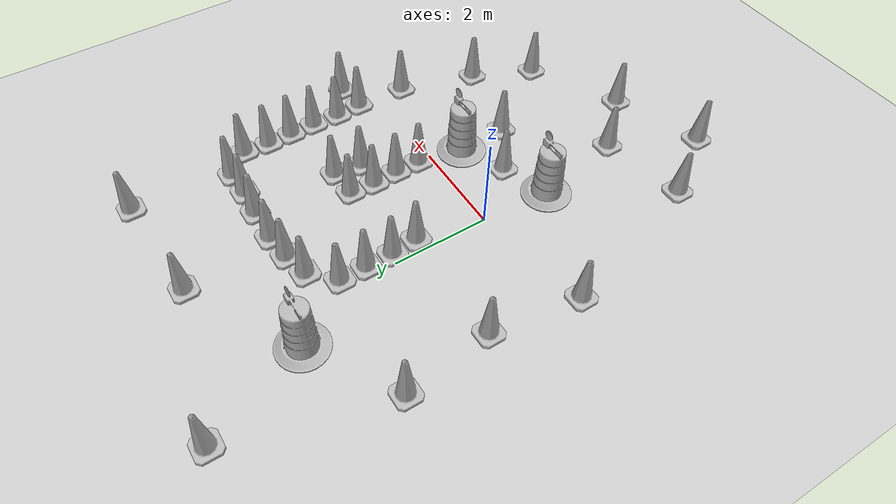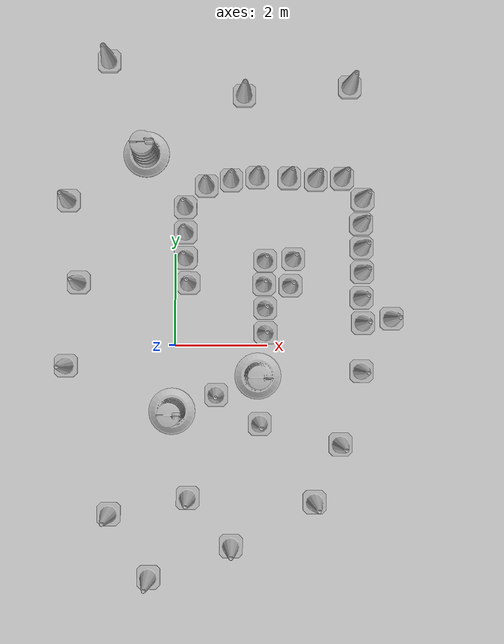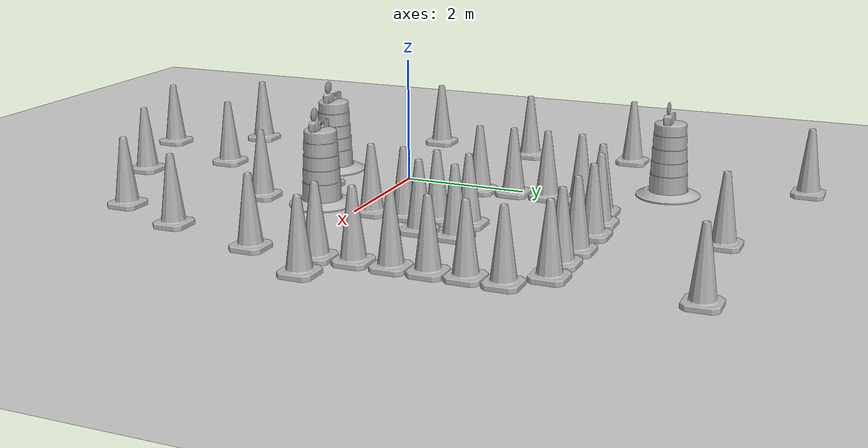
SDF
<sdf version="1.7">
 <world name="default">
  <light name="sun" type="directional">
   <pose>0 0 10 0 -0 0</pose>
   <diffuse>0.8 0.8 0.8 1</diffuse>
   <specular>0.2 0.2 0.2 1</specular>
   <attenuation>
    <range>1000</range>
    <constant>0.9</constant>
    <linear>0.01</linear>
    <quadratic>0.001</quadratic>
   </attenuation>
   <direction>-0.5 0.1 -0.9</direction>
   <spot><inner_angle>0</inner_angle><outer_angle>0</outer_angle><falloff>0</falloff></spot>
  </light>
  <model name="ground_plane">
   <static>1</static>
   <link name="link">
    <collision name="collision">
     <geometry><plane><normal>0 0 1</normal><size>100 100</size></plane></geometry>
     <surface>
      <contact><collide_bitmask>65535</collide_bitmask></contact>
      <friction><ode><mu>100</mu><mu2>50</mu2></ode></friction>
     </surface>
    </collision>
    <visual name="visual">
     <cast_shadows>0</cast_shadows>
     <geometry><plane><normal>0 0 1</normal><size>100 100</size></plane></geometry>
     <material>
      <script><uri>file://media/materials/scripts/gazebo.material</uri><name>Gazebo/Grey</name></script>
     </material>
    </visual>
   </link>
  </model>
  <gravity>0 0 -9.8</gravity>
  <magnetic_field>6e-06 2.3e-05 -4.2e-05</magnetic_field>
  <atmosphere type="adiabatic"/>
  <physics type="ode">
   <max_step_size>0.001</max_step_size>
   <real_time_factor>1</real_time_factor>
   <real_time_update_rate>1000</real_time_update_rate>
  </physics>
  <scene><ambient>0.4 0.4 0.4 1</ambient><background>0.7 0.7 0.7 1</background><shadows>1</shadows></scene>
  <audio><device>default</device></audio>
  <spherical_coordinates>
   <surface_model>EARTH_WGS84</surface_model>
   <latitude_deg>0</latitude_deg>
   <longitude_deg>0</longitude_deg>
   <elevation>0</elevation>
   <heading_deg>0</heading_deg>
  </spherical_coordinates>
  <model name="Construction Barrel">
   <link name="link">
    <inertial>
     <pose>0 0 0.4 0 -0 0</pose>
     <mass>500</mass>
     <inertia><ixx>51.2096</ixx><iyy>51.2096</iyy><izz>25</izz><ixy>0</ixy><ixz>0</ixz><iyz>0</iyz></inertia>
    </inertial>
    <collision name="collision">
     <geometry><mesh><uri>model://construction_barrel/meshes/construction_barrel.dae</uri></mesh></geometry>
    </collision>
    <visual name="visual">
     <geometry><mesh><uri>model://construction_barrel/meshes/construction_barrel.dae</uri></mesh></geometry>
    </visual>
   </link>
   <pose>-0.076427 -1.43604 0 0 0 -5.7e-05</pose>
  </model>
  <model name="Construction Cone">
   <link name="link">
    <collision name="collision">
     <geometry>
      <mesh><scale>10 10 10</scale><uri>model://construction_cone/meshes/construction_cone.dae</uri></mesh>
     </geometry>
    </collision>
    <visual name="visual">
     <geometry>
      <mesh><scale>10 10 10</scale><uri>model://construction_cone/meshes/construction_cone.dae</uri></mesh>
     </geometry>
    </visual>
    <inertial>
     <inertia><ixx>1</ixx><ixy>0</ixy><ixz>0</ixz><iyy>1</iyy><iyz>0</iyz><izz>1</izz></inertia>
     <mass>1</mass>
    </inertial>
   </link>
   <pose>1.96406 0.280598 -1e-05 0 -0 0</pose>
  </model>
  <model name="Construction Barrel_0">
   <link name="link">
    <inertial>
     <pose>0 0 0.4 0 -0 0</pose>
     <mass>500</mass>
     <inertia><ixx>51.2096</ixx><iyy>51.2096</iyy><izz>25</izz><ixy>0</ixy><ixz>0</ixz><iyz>0</iyz></inertia>
    </inertial>
    <collision name="collision">
     <geometry><mesh><uri>model://construction_barrel/meshes/construction_barrel.dae</uri></mesh></geometry>
    </collision>
    <visual name="visual">
     <geometry><mesh><uri>model://construction_barrel/meshes/construction_barrel.dae</uri></mesh></geometry>
    </visual>
   </link>
   <pose>-0.656831 4.20843 0 0 0 -5.4e-05</pose>
  </model>
  <model name="Construction Cone_0">
   <link name="link">
    <collision name="collision">
     <geometry>
      <mesh><scale>10 10 10</scale><uri>model://construction_cone/meshes/construction_cone.dae</uri></mesh>
     </geometry>
    </collision>
    <visual name="visual">
     <geometry>
      <mesh><scale>10 10 10</scale><uri>model://construction_cone/meshes/construction_cone.dae</uri></mesh>
     </geometry>
    </visual>
    <inertial>
     <inertia><ixx>1</ixx><ixy>0</ixy><ixz>0</ixz><iyy>1</iyy><iyz>0</iyz><izz>1</izz></inertia>
     <mass>1</mass>
    </inertial>
   </link>
   <pose>-2.39353 -0.445545 -0 1e-06 -0 0</pose>
  </model>
  <model name="Construction Cone_1">
   <link name="link">
    <collision name="collision">
     <geometry>
      <mesh><scale>10 10 10</scale><uri>model://construction_cone/meshes/construction_cone.dae</uri></mesh>
     </geometry>
    </collision>
    <visual name="visual">
     <geometry>
      <mesh><scale>10 10 10</scale><uri>model://construction_cone/meshes/construction_cone.dae</uri></mesh>
     </geometry>
    </visual>
    <inertial>
     <inertia><ixx>1</ixx><ixy>0</ixy><ixz>0</ixz><iyy>1</iyy><iyz>0</iyz><izz>1</izz></inertia>
     <mass>1</mass>
    </inertial>
   </link>
   <pose>1.96193 0.816303 -0 0 -0 0</pose>
  </model>
  <model name="Construction Cone_2">
   <link name="link">
    <collision name="collision">
     <geometry>
      <mesh><scale>10 10 10</scale><uri>model://construction_cone/meshes/construction_cone.dae</uri></mesh>
     </geometry>
    </collision>
    <visual name="visual">
     <geometry>
      <mesh><scale>10 10 10</scale><uri>model://construction_cone/meshes/construction_cone.dae</uri></mesh>
     </geometry>
    </visual>
    <inertial>
     <inertia><ixx>1</ixx><ixy>0</ixy><ixz>0</ixz><iyy>1</iyy><iyz>0</iyz><izz>1</izz></inertia>
     <mass>1</mass>
    </inertial>
   </link>
   <pose>1.93144 1.34388 -0 0 -1e-06 0</pose>
  </model>
  <model name="Construction Cone_3">
   <link name="link">
    <collision name="collision">
     <geometry>
      <mesh><scale>10 10 10</scale><uri>model://construction_cone/meshes/construction_cone.dae</uri></mesh>
     </geometry>
    </collision>
    <visual name="visual">
     <geometry>
      <mesh><scale>10 10 10</scale><uri>model://construction_cone/meshes/construction_cone.dae</uri></mesh>
     </geometry>
    </visual>
    <inertial>
     <inertia><ixx>1</ixx><ixy>0</ixy><ixz>0</ixz><iyy>1</iyy><iyz>0</iyz><izz>1</izz></inertia>
     <mass>1</mass>
    </inertial>
   </link>
   <pose>0.280355 1.36865 -0 0 -0 0</pose>
  </model>
  <model name="Construction Cone_4">
   <link name="link">
    <collision name="collision">
     <geometry>
      <mesh><scale>10 10 10</scale><uri>model://construction_cone/meshes/construction_cone.dae</uri></mesh>
     </geometry>
    </collision>
    <visual name="visual">
     <geometry>
      <mesh><scale>10 10 10</scale><uri>model://construction_cone/meshes/construction_cone.dae</uri></mesh>
     </geometry>
    </visual>
    <inertial>
     <inertia><ixx>1</ixx><ixy>0</ixy><ixz>0</ixz><iyy>1</iyy><iyz>0</iyz><izz>1</izz></inertia>
     <mass>1</mass>
    </inertial>
   </link>
   <pose>0.218975 1.92075 -0 0 -0 0</pose>
  </model>
  <model name="Construction Cone_5">
   <link name="link">
    <collision name="collision">
     <geometry>
      <mesh><scale>10 10 10</scale><uri>model://construction_cone/meshes/construction_cone.dae</uri></mesh>
     </geometry>
    </collision>
    <visual name="visual">
     <geometry>
      <mesh><scale>10 10 10</scale><uri>model://construction_cone/meshes/construction_cone.dae</uri></mesh>
     </geometry>
    </visual>
    <inertial>
     <inertia><ixx>1</ixx><ixy>0</ixy><ixz>0</ixz><iyy>1</iyy><iyz>0</iyz><izz>1</izz></inertia>
     <mass>1</mass>
    </inertial>
   </link>
   <pose>0.214856 2.48115 -0 0 -0 0</pose>
  </model>
  <model name="Construction Cone_6">
   <link name="link">
    <collision name="collision">
     <geometry>
      <mesh><scale>10 10 10</scale><uri>model://construction_cone/meshes/construction_cone.dae</uri></mesh>
     </geometry>
    </collision>
    <visual name="visual">
     <geometry>
      <mesh><scale>10 10 10</scale><uri>model://construction_cone/meshes/construction_cone.dae</uri></mesh>
     </geometry>
    </visual>
    <inertial>
     <inertia><ixx>1</ixx><ixy>0</ixy><ixz>0</ixz><iyy>1</iyy><iyz>0</iyz><izz>1</izz></inertia>
     <mass>1</mass>
    </inertial>
   </link>
   <pose>0.205911 3.03412 0 -0 -0 -0</pose>
  </model>
  <model name="Construction Cone_7">
   <link name="link">
    <collision name="collision">
     <geometry>
      <mesh><scale>10 10 10</scale><uri>model://construction_cone/meshes/construction_cone.dae</uri></mesh>
     </geometry>
    </collision>
    <visual name="visual">
     <geometry>
      <mesh><scale>10 10 10</scale><uri>model://construction_cone/meshes/construction_cone.dae</uri></mesh>
     </geometry>
    </visual>
    <inertial>
     <inertia><ixx>1</ixx><ixy>0</ixy><ixz>0</ixz><iyy>1</iyy><iyz>0</iyz><izz>1</izz></inertia>
     <mass>1</mass>
    </inertial>
   </link>
   <pose>-2.12743 1.37486 -0 0 -0 0</pose>
  </model>
  <model name="Construction Cone_8">
   <link name="link">
    <collision name="collision">
     <geometry>
      <mesh><scale>10 10 10</scale><uri>model://construction_cone/meshes/construction_cone.dae</uri></mesh>
     </geometry>
    </collision>
    <visual name="visual">
     <geometry>
      <mesh><scale>10 10 10</scale><uri>model://construction_cone/meshes/construction_cone.dae</uri></mesh>
     </geometry>
    </visual>
    <inertial>
     <inertia><ixx>1</ixx><ixy>0</ixy><ixz>0</ixz><iyy>1</iyy><iyz>0</iyz><izz>1</izz></inertia>
     <mass>1</mass>
    </inertial>
   </link>
   <pose>0.89027 -1.07593 -8e-06 0 1e-06 0</pose>
  </model>
  <model name="Construction Barrel_1">
   <link name="link">
    <inertial>
     <pose>0 0 0.4 0 -0 0</pose>
     <mass>500</mass>
     <inertia><ixx>51.2096</ixx><iyy>51.2096</iyy><izz>25</izz><ixy>0</ixy><ixz>0</ixz><iyz>0</iyz></inertia>
    </inertial>
    <collision name="collision">
     <geometry><mesh><uri>model://construction_barrel/meshes/construction_barrel.dae</uri></mesh></geometry>
    </collision>
    <visual name="visual">
     <geometry><mesh><uri>model://construction_barrel/meshes/construction_barrel.dae</uri></mesh></geometry>
    </visual>
   </link>
   <pose>1.79927 -0.663748 0 0 0 -4.2e-05</pose>
  </model>
  <model name="Construction Cone_9">
   <link name="link">
    <collision name="collision">
     <geometry>
      <mesh><scale>10 10 10</scale><uri>model://construction_cone/meshes/construction_cone.dae</uri></mesh>
     </geometry>
    </collision>
    <visual name="visual">
     <geometry>
      <mesh><scale>10 10 10</scale><uri>model://construction_cone/meshes/construction_cone.dae</uri></mesh>
     </geometry>
    </visual>
    <inertial>
     <inertia><ixx>1</ixx><ixy>0</ixy><ixz>0</ixz><iyy>1</iyy><iyz>0</iyz><izz>1</izz></inertia>
     <mass>1</mass>
    </inertial>
   </link>
   <pose>1.95851 1.86272 -1e-05 -1e-06 0 0</pose>
  </model>
  <model name="Construction Cone_10">
   <link name="link">
    <collision name="collision">
     <geometry>
      <mesh><scale>10 10 10</scale><uri>model://construction_cone/meshes/construction_cone.dae</uri></mesh>
     </geometry>
    </collision>
    <visual name="visual">
     <geometry>
      <mesh><scale>10 10 10</scale><uri>model://construction_cone/meshes/construction_cone.dae</uri></mesh>
     </geometry>
    </visual>
    <inertial>
     <inertia><ixx>1</ixx><ixy>0</ixy><ixz>0</ixz><iyy>1</iyy><iyz>0</iyz><izz>1</izz></inertia>
     <mass>1</mass>
    </inertial>
   </link>
   <pose>0.673267 3.50285 -0 0 -0 0</pose>
  </model>
  <model name="Construction Cone_11">
   <link name="link">
    <collision name="collision">
     <geometry>
      <mesh><scale>10 10 10</scale><uri>model://construction_cone/meshes/construction_cone.dae</uri></mesh>
     </geometry>
    </collision>
    <visual name="visual">
     <geometry>
      <mesh><scale>10 10 10</scale><uri>model://construction_cone/meshes/construction_cone.dae</uri></mesh>
     </geometry>
    </visual>
    <inertial>
     <inertia><ixx>1</ixx><ixy>0</ixy><ixz>0</ixz><iyy>1</iyy><iyz>0</iyz><izz>1</izz></inertia>
     <mass>1</mass>
    </inertial>
   </link>
   <pose>1.21372 3.63277 -1e-05 0 -0 0</pose>
  </model>
  <model name="Construction Cone_12">
   <link name="link">
    <collision name="collision">
     <geometry>
      <mesh><scale>10 10 10</scale><uri>model://construction_cone/meshes/construction_cone.dae</uri></mesh>
     </geometry>
    </collision>
    <visual name="visual">
     <geometry>
      <mesh><scale>10 10 10</scale><uri>model://construction_cone/meshes/construction_cone.dae</uri></mesh>
     </geometry>
    </visual>
    <inertial>
     <inertia><ixx>1</ixx><ixy>0</ixy><ixz>0</ixz><iyy>1</iyy><iyz>0</iyz><izz>1</izz></inertia>
     <mass>1</mass>
    </inertial>
   </link>
   <pose>1.77992 3.69359 -1e-05 -1e-06 0 0</pose>
  </model>
  <model name="Construction Cone_13">
   <link name="link">
    <collision name="collision">
     <geometry>
      <mesh><scale>10 10 10</scale><uri>model://construction_cone/meshes/construction_cone.dae</uri></mesh>
     </geometry>
    </collision>
    <visual name="visual">
     <geometry>
      <mesh><scale>10 10 10</scale><uri>model://construction_cone/meshes/construction_cone.dae</uri></mesh>
     </geometry>
    </visual>
    <inertial>
     <inertia><ixx>1</ixx><ixy>0</ixy><ixz>0</ixz><iyy>1</iyy><iyz>0</iyz><izz>1</izz></inertia>
     <mass>1</mass>
    </inertial>
   </link>
   <pose>2.48703 3.68086 -0 0 -0 0</pose>
  </model>
  <model name="Construction Cone_14">
   <link name="link">
    <collision name="collision">
     <geometry>
      <mesh><scale>10 10 10</scale><uri>model://construction_cone/meshes/construction_cone.dae</uri></mesh>
     </geometry>
    </collision>
    <visual name="visual">
     <geometry>
      <mesh><scale>10 10 10</scale><uri>model://construction_cone/meshes/construction_cone.dae</uri></mesh>
     </geometry>
    </visual>
    <inertial>
     <inertia><ixx>1</ixx><ixy>0</ixy><ixz>0</ixz><iyy>1</iyy><iyz>0</iyz><izz>1</izz></inertia>
     <mass>1</mass>
    </inertial>
   </link>
   <pose>2.5736 1.89777 -1e-06 2e-06 2e-06 0</pose>
  </model>
  <model name="Construction Cone_15">
   <link name="link">
    <collision name="collision">
     <geometry>
      <mesh><scale>10 10 10</scale><uri>model://construction_cone/meshes/construction_cone.dae</uri></mesh>
     </geometry>
    </collision>
    <visual name="visual">
     <geometry>
      <mesh><scale>10 10 10</scale><uri>model://construction_cone/meshes/construction_cone.dae</uri></mesh>
     </geometry>
    </visual>
    <inertial>
     <inertia><ixx>1</ixx><ixy>0</ixy><ixz>0</ixz><iyy>1</iyy><iyz>0</iyz><izz>1</izz></inertia>
     <mass>1</mass>
    </inertial>
   </link>
   <pose>3.07043 3.64661 -0 0 -1e-06 0</pose>
  </model>
  <model name="Construction Cone_16">
   <link name="link">
    <collision name="collision">
     <geometry>
      <mesh><scale>10 10 10</scale><uri>model://construction_cone/meshes/construction_cone.dae</uri></mesh>
     </geometry>
    </collision>
    <visual name="visual">
     <geometry>
      <mesh><scale>10 10 10</scale><uri>model://construction_cone/meshes/construction_cone.dae</uri></mesh>
     </geometry>
    </visual>
    <inertial>
     <inertia><ixx>1</ixx><ixy>0</ixy><ixz>0</ixz><iyy>1</iyy><iyz>0</iyz><izz>1</izz></inertia>
     <mass>1</mass>
    </inertial>
   </link>
   <pose>2.51128 1.31306 -0 0 -0 0</pose>
  </model>
  <model name="Construction Cone_17">
   <link name="link">
    <collision name="collision">
     <geometry>
      <mesh><scale>10 10 10</scale><uri>model://construction_cone/meshes/construction_cone.dae</uri></mesh>
     </geometry>
    </collision>
    <visual name="visual">
     <geometry>
      <mesh><scale>10 10 10</scale><uri>model://construction_cone/meshes/construction_cone.dae</uri></mesh>
     </geometry>
    </visual>
    <inertial>
     <inertia><ixx>1</ixx><ixy>0</ixy><ixz>0</ixz><iyy>1</iyy><iyz>0</iyz><izz>1</izz></inertia>
     <mass>1</mass>
    </inertial>
   </link>
   <pose>3.64505 3.67313 -0 0 -0 0</pose>
  </model>
  <model name="Construction Cone_18">
   <link name="link">
    <collision name="collision">
     <geometry>
      <mesh><scale>10 10 10</scale><uri>model://construction_cone/meshes/construction_cone.dae</uri></mesh>
     </geometry>
    </collision>
    <visual name="visual">
     <geometry>
      <mesh><scale>10 10 10</scale><uri>model://construction_cone/meshes/construction_cone.dae</uri></mesh>
     </geometry>
    </visual>
    <inertial>
     <inertia><ixx>1</ixx><ixy>0</ixy><ixz>0</ixz><iyy>1</iyy><iyz>0</iyz><izz>1</izz></inertia>
     <mass>1</mass>
    </inertial>
   </link>
   <pose>4.09283 3.20742 0 -1e-06 0 0</pose>
  </model>
  <model name="Construction Cone_19">
   <link name="link">
    <collision name="collision">
     <geometry>
      <mesh><scale>10 10 10</scale><uri>model://construction_cone/meshes/construction_cone.dae</uri></mesh>
     </geometry>
    </collision>
    <visual name="visual">
     <geometry>
      <mesh><scale>10 10 10</scale><uri>model://construction_cone/meshes/construction_cone.dae</uri></mesh>
     </geometry>
    </visual>
    <inertial>
     <inertia><ixx>1</ixx><ixy>0</ixy><ixz>0</ixz><iyy>1</iyy><iyz>0</iyz><izz>1</izz></inertia>
     <mass>1</mass>
    </inertial>
   </link>
   <pose>4.06212 2.67237 -0 0 -0 0</pose>
  </model>
  <model name="Construction Cone_20">
   <link name="link">
    <collision name="collision">
     <geometry>
      <mesh><scale>10 10 10</scale><uri>model://construction_cone/meshes/construction_cone.dae</uri></mesh>
     </geometry>
    </collision>
    <visual name="visual">
     <geometry>
      <mesh><scale>10 10 10</scale><uri>model://construction_cone/meshes/construction_cone.dae</uri></mesh>
     </geometry>
    </visual>
    <inertial>
     <inertia><ixx>1</ixx><ixy>0</ixy><ixz>0</ixz><iyy>1</iyy><iyz>0</iyz><izz>1</izz></inertia>
     <mass>1</mass>
    </inertial>
   </link>
   <pose>4.07144 2.1457 -1e-05 -1e-06 0 0</pose>
  </model>
  <model name="Construction Cone_21">
   <link name="link">
    <collision name="collision">
     <geometry>
      <mesh><scale>10 10 10</scale><uri>model://construction_cone/meshes/construction_cone.dae</uri></mesh>
     </geometry>
    </collision>
    <visual name="visual">
     <geometry>
      <mesh><scale>10 10 10</scale><uri>model://construction_cone/meshes/construction_cone.dae</uri></mesh>
     </geometry>
    </visual>
    <inertial>
     <inertia><ixx>1</ixx><ixy>0</ixy><ixz>0</ixz><iyy>1</iyy><iyz>0</iyz><izz>1</izz></inertia>
     <mass>1</mass>
    </inertial>
   </link>
   <pose>4.08102 1.61234 0 -0 -0 -0</pose>
  </model>
  <model name="Construction Cone_22">
   <link name="link">
    <collision name="collision">
     <geometry>
      <mesh><scale>10 10 10</scale><uri>model://construction_cone/meshes/construction_cone.dae</uri></mesh>
     </geometry>
    </collision>
    <visual name="visual">
     <geometry>
      <mesh><scale>10 10 10</scale><uri>model://construction_cone/meshes/construction_cone.dae</uri></mesh>
     </geometry>
    </visual>
    <inertial>
     <inertia><ixx>1</ixx><ixy>0</ixy><ixz>0</ixz><iyy>1</iyy><iyz>0</iyz><izz>1</izz></inertia>
     <mass>1</mass>
    </inertial>
   </link>
   <pose>4.06447 1.04839 -0 0 -0 0</pose>
  </model>
  <model name="Construction Cone_23">
   <link name="link">
    <collision name="collision">
     <geometry>
      <mesh><scale>10 10 10</scale><uri>model://construction_cone/meshes/construction_cone.dae</uri></mesh>
     </geometry>
    </collision>
    <visual name="visual">
     <geometry>
      <mesh><scale>10 10 10</scale><uri>model://construction_cone/meshes/construction_cone.dae</uri></mesh>
     </geometry>
    </visual>
    <inertial>
     <inertia><ixx>1</ixx><ixy>0</ixy><ixz>0</ixz><iyy>1</iyy><iyz>0</iyz><izz>1</izz></inertia>
     <mass>1</mass>
    </inertial>
   </link>
   <pose>4.09481 0.498981 -0 0 -0 0</pose>
  </model>
  <model name="Construction Cone_24">
   <link name="link">
    <collision name="collision">
     <geometry>
      <mesh><scale>10 10 10</scale><uri>model://construction_cone/meshes/construction_cone.dae</uri></mesh>
     </geometry>
    </collision>
    <visual name="visual">
     <geometry>
      <mesh><scale>10 10 10</scale><uri>model://construction_cone/meshes/construction_cone.dae</uri></mesh>
     </geometry>
    </visual>
    <inertial>
     <inertia><ixx>1</ixx><ixy>0</ixy><ixz>0</ixz><iyy>1</iyy><iyz>0</iyz><izz>1</izz></inertia>
     <mass>1</mass>
    </inertial>
   </link>
   <pose>4.71868 0.594013 -0 0 -0 0</pose>
  </model>
  <model name="Construction Cone_25">
   <link name="link">
    <collision name="collision">
     <geometry>
      <mesh><scale>10 10 10</scale><uri>model://construction_cone/meshes/construction_cone.dae</uri></mesh>
     </geometry>
    </collision>
    <visual name="visual">
     <geometry>
      <mesh><scale>10 10 10</scale><uri>model://construction_cone/meshes/construction_cone.dae</uri></mesh>
     </geometry>
    </visual>
    <inertial>
     <inertia><ixx>1</ixx><ixy>0</ixy><ixz>0</ixz><iyy>1</iyy><iyz>0</iyz><izz>1</izz></inertia>
     <mass>1</mass>
    </inertial>
   </link>
   <pose>4.059 -0.554992 -0 1e-06 -0 0</pose>
  </model>
  <model name="Construction Cone_26">
   <link name="link">
    <collision name="collision">
     <geometry>
      <mesh><scale>10 10 10</scale><uri>model://construction_cone/meshes/construction_cone.dae</uri></mesh>
     </geometry>
    </collision>
    <visual name="visual">
     <geometry>
      <mesh><scale>10 10 10</scale><uri>model://construction_cone/meshes/construction_cone.dae</uri></mesh>
     </geometry>
    </visual>
    <inertial>
     <inertia><ixx>1</ixx><ixy>0</ixy><ixz>0</ixz><iyy>1</iyy><iyz>0</iyz><izz>1</izz></inertia>
     <mass>1</mass>
    </inertial>
   </link>
   <pose>1.84112 -1.70332 0 -0 -0 -0</pose>
  </model>
  <model name="Construction Cone_27">
   <link name="link">
    <collision name="collision">
     <geometry>
      <mesh><scale>10 10 10</scale><uri>model://construction_cone/meshes/construction_cone.dae</uri></mesh>
     </geometry>
    </collision>
    <visual name="visual">
     <geometry>
      <mesh><scale>10 10 10</scale><uri>model://construction_cone/meshes/construction_cone.dae</uri></mesh>
     </geometry>
    </visual>
    <inertial>
     <inertia><ixx>1</ixx><ixy>0</ixy><ixz>0</ixz><iyy>1</iyy><iyz>0</iyz><izz>1</izz></inertia>
     <mass>1</mass>
    </inertial>
   </link>
   <pose>3.03455 -3.39673 -0 0 -0 0</pose>
  </model>
  <model name="Construction Cone_28">
   <link name="link">
    <collision name="collision">
     <geometry>
      <mesh><scale>10 10 10</scale><uri>model://construction_cone/meshes/construction_cone.dae</uri></mesh>
     </geometry>
    </collision>
    <visual name="visual">
     <geometry>
      <mesh><scale>10 10 10</scale><uri>model://construction_cone/meshes/construction_cone.dae</uri></mesh>
     </geometry>
    </visual>
    <inertial>
     <inertia><ixx>1</ixx><ixy>0</ixy><ixz>0</ixz><iyy>1</iyy><iyz>0</iyz><izz>1</izz></inertia>
     <mass>1</mass>
    </inertial>
   </link>
   <pose>3.5981 -2.14963 -0 0 -0 0</pose>
  </model>
  <model name="Construction Cone_29">
   <link name="link">
    <collision name="collision">
     <geometry>
      <mesh><scale>10 10 10</scale><uri>model://construction_cone/meshes/construction_cone.dae</uri></mesh>
     </geometry>
    </collision>
    <visual name="visual">
     <geometry>
      <mesh><scale>10 10 10</scale><uri>model://construction_cone/meshes/construction_cone.dae</uri></mesh>
     </geometry>
    </visual>
    <inertial>
     <inertia><ixx>1</ixx><ixy>0</ixy><ixz>0</ixz><iyy>1</iyy><iyz>0</iyz><izz>1</izz></inertia>
     <mass>1</mass>
    </inertial>
   </link>
   <pose>0.275565 -3.30972 -0 0 -0 0</pose>
  </model>
  <model name="Construction Cone_30">
   <link name="link">
    <collision name="collision">
     <geometry>
      <mesh><scale>10 10 10</scale><uri>model://construction_cone/meshes/construction_cone.dae</uri></mesh>
     </geometry>
    </collision>
    <visual name="visual">
     <geometry>
      <mesh><scale>10 10 10</scale><uri>model://construction_cone/meshes/construction_cone.dae</uri></mesh>
     </geometry>
    </visual>
    <inertial>
     <inertia><ixx>1</ixx><ixy>0</ixy><ixz>0</ixz><iyy>1</iyy><iyz>0</iyz><izz>1</izz></inertia>
     <mass>1</mass>
    </inertial>
   </link>
   <pose>-1.43754 -3.66228 -0 0 -0 0</pose>
  </model>
  <model name="Construction Cone_31">
   <link name="link">
    <collision name="collision">
     <geometry>
      <mesh><scale>10 10 10</scale><uri>model://construction_cone/meshes/construction_cone.dae</uri></mesh>
     </geometry>
    </collision>
    <visual name="visual">
     <geometry>
      <mesh><scale>10 10 10</scale><uri>model://construction_cone/meshes/construction_cone.dae</uri></mesh>
     </geometry>
    </visual>
    <inertial>
     <inertia><ixx>1</ixx><ixy>0</ixy><ixz>0</ixz><iyy>1</iyy><iyz>0</iyz><izz>1</izz></inertia>
     <mass>1</mass>
    </inertial>
   </link>
   <pose>-0.569965 -5.0214 -0 0 -1e-06 0</pose>
  </model>
  <model name="Construction Cone_32">
   <link name="link">
    <collision name="collision">
     <geometry>
      <mesh><scale>10 10 10</scale><uri>model://construction_cone/meshes/construction_cone.dae</uri></mesh>
     </geometry>
    </collision>
    <visual name="visual">
     <geometry>
      <mesh><scale>10 10 10</scale><uri>model://construction_cone/meshes/construction_cone.dae</uri></mesh>
     </geometry>
    </visual>
    <inertial>
     <inertia><ixx>1</ixx><ixy>0</ixy><ixz>0</ixz><iyy>1</iyy><iyz>0</iyz><izz>1</izz></inertia>
     <mass>1</mass>
    </inertial>
   </link>
   <pose>1.21704 -4.34913 -0 0 -1e-06 0</pose>
  </model>
  <model name="Construction Cone_33">
   <link name="link">
    <collision name="collision">
     <geometry>
      <mesh><scale>10 10 10</scale><uri>model://construction_cone/meshes/construction_cone.dae</uri></mesh>
     </geometry>
    </collision>
    <visual name="visual">
     <geometry>
      <mesh><scale>10 10 10</scale><uri>model://construction_cone/meshes/construction_cone.dae</uri></mesh>
     </geometry>
    </visual>
    <inertial>
     <inertia><ixx>1</ixx><ixy>0</ixy><ixz>0</ixz><iyy>1</iyy><iyz>0</iyz><izz>1</izz></inertia>
     <mass>1</mass>
    </inertial>
   </link>
   <pose>-2.35828 3.17641 -0 0 -0 0</pose>
  </model>
  <model name="Construction Cone_34">
   <link name="link">
    <collision name="collision">
     <geometry>
      <mesh><scale>10 10 10</scale><uri>model://construction_cone/meshes/construction_cone.dae</uri></mesh>
     </geometry>
    </collision>
    <visual name="visual">
     <geometry>
      <mesh><scale>10 10 10</scale><uri>model://construction_cone/meshes/construction_cone.dae</uri></mesh>
     </geometry>
    </visual>
    <inertial>
     <inertia><ixx>1</ixx><ixy>0</ixy><ixz>0</ixz><iyy>1</iyy><iyz>0</iyz><izz>1</izz></inertia>
     <mass>1</mass>
    </inertial>
   </link>
   <pose>3.82122 5.70406 -0 0 -1e-06 0</pose>
  </model>
  <model name="Construction Cone_35">
   <link name="link">
    <collision name="collision">
     <geometry>
      <mesh><scale>10 10 10</scale><uri>model://construction_cone/meshes/construction_cone.dae</uri></mesh>
     </geometry>
    </collision>
    <visual name="visual">
     <geometry>
      <mesh><scale>10 10 10</scale><uri>model://construction_cone/meshes/construction_cone.dae</uri></mesh>
     </geometry>
    </visual>
    <inertial>
     <inertia><ixx>1</ixx><ixy>0</ixy><ixz>0</ixz><iyy>1</iyy><iyz>0</iyz><izz>1</izz></inertia>
     <mass>1</mass>
    </inertial>
   </link>
   <pose>1.49703 5.51032 -1e-05 0 -0 0</pose>
  </model>
  <model name="Construction Cone_36">
   <link name="link">
    <collision name="collision">
     <geometry>
      <mesh><scale>10 10 10</scale><uri>model://construction_cone/meshes/construction_cone.dae</uri></mesh>
     </geometry>
    </collision>
    <visual name="visual">
     <geometry>
      <mesh><scale>10 10 10</scale><uri>model://construction_cone/meshes/construction_cone.dae</uri></mesh>
     </geometry>
    </visual>
    <inertial>
     <inertia><ixx>1</ixx><ixy>0</ixy><ixz>0</ixz><iyy>1</iyy><iyz>0</iyz><izz>1</izz></inertia>
     <mass>1</mass>
    </inertial>
   </link>
   <pose>-1.48345 6.27099 -0 0 -0 0</pose>
  </model>
 </world>
</sdf>
